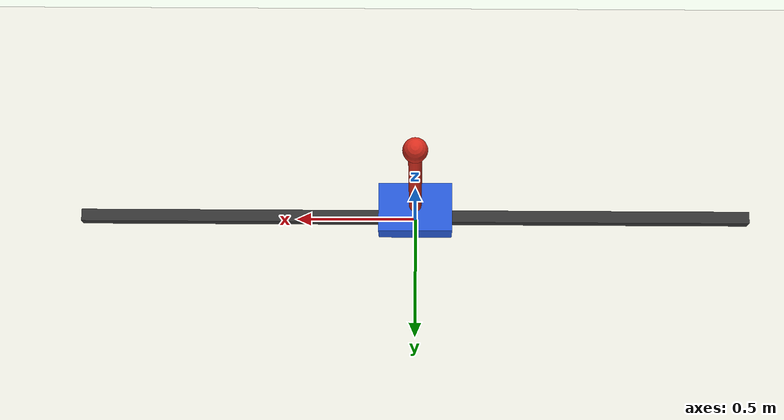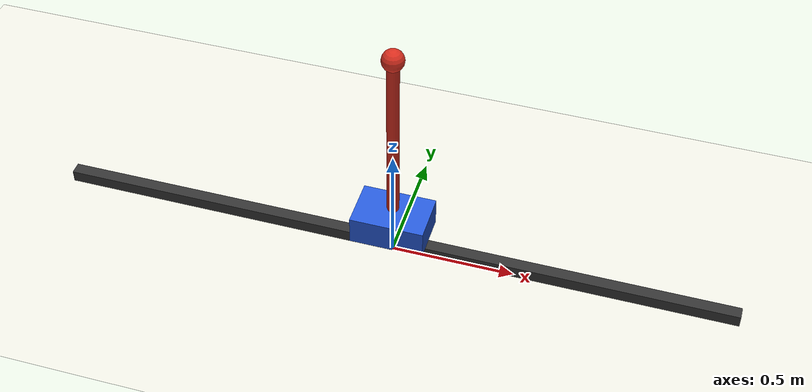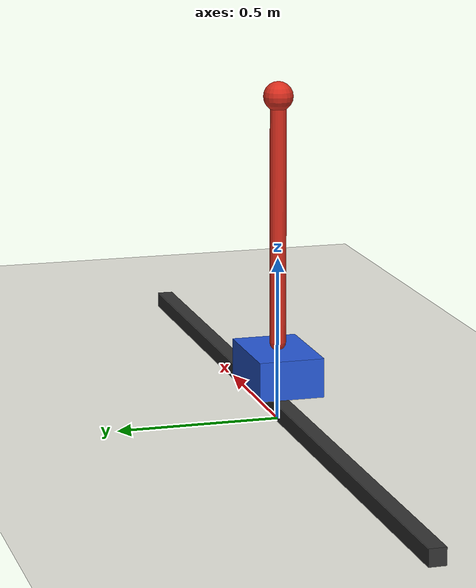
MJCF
<mujoco model="cartpole_inverted_pendulum">
  <compiler angle="radian" autolimits="true"/>

  <option timestep="0.002" integrator="RK4"/>

  <default>
    <joint damping="0.05"/>
    <geom friction="0.8 0.1 0.1"/>
  </default>

  <asset>
    <material name="cart_mat" rgba="0.15 0.35 0.85 1"/>
    <material name="pole_mat" rgba="0.85 0.18 0.12 1"/>
    <material name="rail_mat" rgba="0.2 0.2 0.2 1"/>
  </asset>

  <worldbody>
    <light name="top_light" pos="0 0 3"/>
    <camera name="fixed" pos="0 -4 1.6" xyaxes="1 0 0 0 0.35 0.94"/>

    <geom name="floor" type="plane" size="3 1 0.05" rgba="0.92 0.92 0.88 1"/>
    <geom name="rail" type="box" pos="0 0 0.04" size="1.4 0.025 0.025" material="rail_mat" contype="0" conaffinity="0"/>

    <body name="cart" pos="0 0 0.16">
      <joint name="slider" type="slide" axis="1 0 0" range="-1.2 1.2" damping="0.15"/>
      <geom name="cart_geom" type="box" size="0.15 0.10 0.06" mass="1.0" material="cart_mat"/>

      <body name="pole" pos="0 0 0.08">
        <joint name="hinge" type="hinge" axis="0 1 0" damping="0.003" armature="0.001"/>
        <geom name="pole_geom" type="capsule" fromto="0 0 0 0 0 0.75" size="0.025" mass="0.12" material="pole_mat"/>
        <geom name="tip_geom" type="sphere" pos="0 0 0.75" size="0.045" mass="0.03" material="pole_mat"/>
      </body>
    </body>
  </worldbody>

  <actuator>
    <motor name="cart_force" joint="slider" gear="1" ctrllimited="true" ctrlrange="-20 20"/>
  </actuator>
</mujoco>
